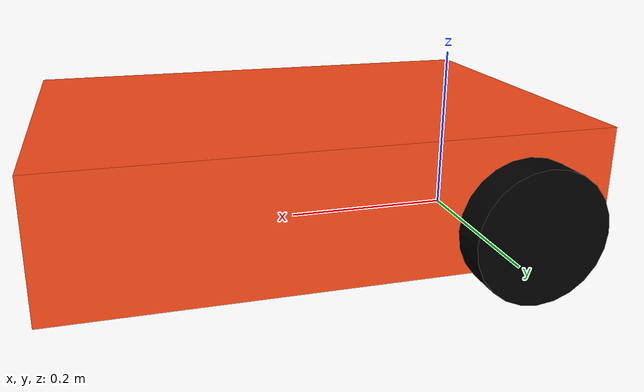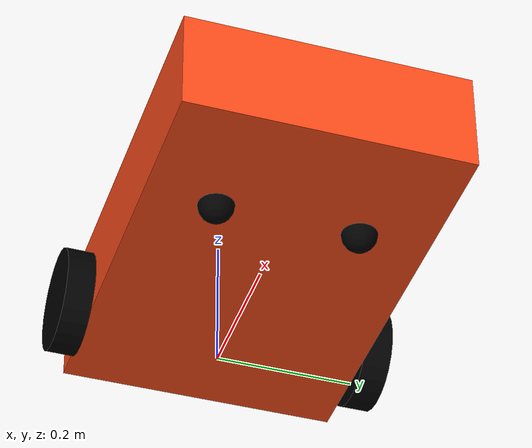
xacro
<?xml version="1.0"?>
<robot xmlns:xacro="http://www.ros.org/wiki/xacro" >
    <xacro:include filename="inertial_macros.xacro"/>

    <material name="white">
        <color rgba="1 1 1 1" />
    </material>

    <material name="orange">
        <color rgba="1 0.3 0.1 1" />
    </material>

    <material name="blue">
        <color rgba="0.2 0.2 1 1" />
    </material>

    <material name="black">
        <color rgba="0 0 0 1" />
    </material>

    <!-- BASE LINK -->
    <link name="base_link">

    </link>

    <!-- CHASSIS LINK -->
    <joint name="chassis_joint" type="fixed">
        <parent link="base_link"/>
        <child link="chassis"/>
        <origin xyz="-0.1 0 0"/>
    </joint>

        <link name="chassis">
        <visual>
            <origin xyz="0.3 0 0.075"/>"
            <geometry>
                <box size="0.6 0.4 0.15"/>
            </geometry>
            <material name="orange"/>
        </visual>
        <collision>
            <origin xyz="0.3 0 0.075"/>"
            <geometry>
                <box size="0.6 0.4 0.15"/>
            </geometry>
        </collision>
        <xacro:inertial_box  mass="1.0" x="0.6" y="0.4" z="0.15">
            <origin xyz="0.3 0 0.075" rpy="0 0 0"/>
        </xacro:inertial_box>
    </link>

    <gazebo reference="chassis">
        <material>Gazebo/Orange</material>
    </gazebo>

    <!-- LEFT WHEEL LINK -->
    <joint name="left_wheel_joint" type="continuous">
        <parent link="base_link"/>
        <child link="left_wheel"/>
        <origin xyz="0 0.22 0.05" rpy="-${pi/2} 0 0"/>
        <axis xyz="0 0 1"/>
    </joint>

    <link name="left_wheel">
        <visual>
            <geometry>
                <cylinder radius="0.075" length="0.04"/>
            </geometry>
            <material name="black"/>
        </visual>
        <collision>
            <geometry>
                <cylinder radius="0.075" length="0.04"/>
            </geometry>
        </collision>
        <xacro:inertial_cylinder mass="0.1" length="0.04" radius="0.075">
            <origin xyz="0 0 0" rpy="0 0 0"/>
        </xacro:inertial_cylinder>
    </link>

    <gazebo reference="left_wheel">
        <material>Gazebo/Black</material>
    </gazebo>

    <!-- RIGHT WHEEL LINK -->
    <joint name="right_wheel_joint" type="continuous">
        <parent link="base_link"/>
        <child link="right_wheel"/>
        <origin xyz="0 -0.22 0.05" rpy="${pi/2} 0 0"/>
        <axis xyz="0 0 -1"/>
    </joint>

    <link name="right_wheel">
        <visual>
            <geometry>
                <cylinder radius="0.075" length="0.04"/>
            </geometry>
            <material name="black"/>
        </visual>
        <collision>
            <geometry>
                <cylinder radius="0.075" length="0.04"/>
            </geometry>
        </collision>
        <xacro:inertial_cylinder mass="0.1" length="0.04" radius="0.075">
            <origin xyz="0 0 0" rpy="0 0 0"/>
        </xacro:inertial_cylinder>
    </link>

    <gazebo reference="right_wheel">
        <material>Gazebo/Black</material>
    </gazebo>

    <!-- LEFT CASTER WHEEL LINK -->
    <joint name="left_caster_wheel_joint" type="fixed">
        <parent link="chassis"/>
        <child link="left_caster_wheel"/>
        <origin xyz="0.42 0.1 0"/>
    </joint>

    <link name="left_caster_wheel">
        <visual>
            <geometry>
                <sphere radius="0.025"/>
            </geometry>
            <material name="black"/>
        </visual>
        <collision>
            <geometry>
                <sphere radius="0.025"/>
            </geometry>
        </collision>
        <xacro:inertial_sphere mass="0.1" radius="0.025">
            <origin xyz="0 0 0" rpy="0 0 0"/>
        </xacro:inertial_sphere>
    </link>

    <gazebo reference="left_caster_wheel">
        <material>Gazebo/Black</material>
        <mu1 value="0.001"/>
        <mu2 value="0.001"/>
    </gazebo>

    <!-- RIGHT CASTER WHEEL LINK -->
    <joint name="right_caster_wheel_joint" type="fixed">
        <parent link="chassis"/>
        <child link="right_caster_wheel"/>
        <origin xyz="0.42 -0.1 0"/>
    </joint>

    <link name="right_caster_wheel">
        <visual>
            <geometry>
                <sphere radius="0.025"/>
            </geometry>
            <material name="black"/>
        </visual>
        <collision>
            <geometry>
                <sphere radius="0.025"/>
            </geometry>
        </collision>
        <xacro:inertial_sphere mass="0.1" radius="0.025">
            <origin xyz="0 0 0" rpy="0 0 0"/>
        </xacro:inertial_sphere>
    </link>

    <gazebo reference="right_caster_wheel">
        <material>Gazebo/Black</material>
        <mu1 value="0.001"/>
        <mu2 value="0.001"/>
    </gazebo>

</robot>
